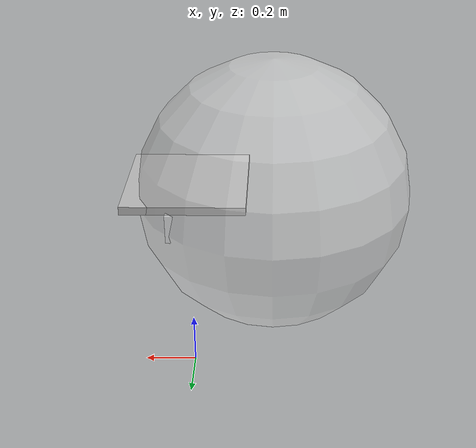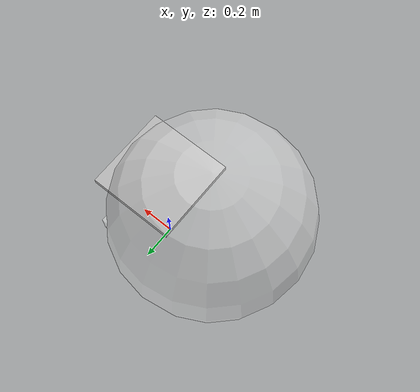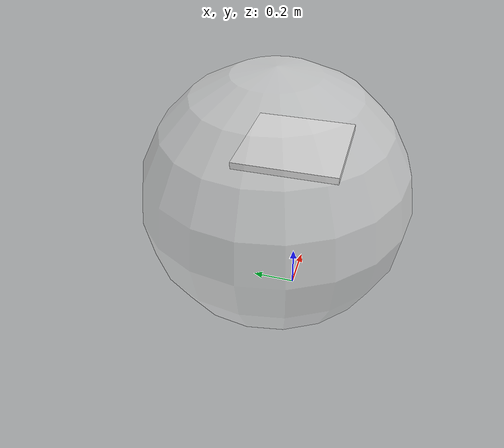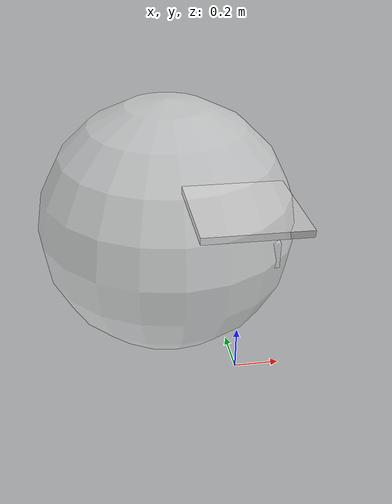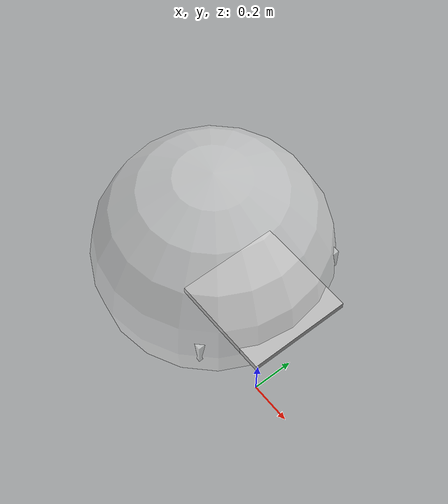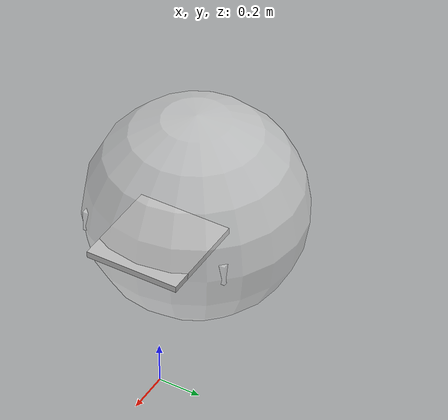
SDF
<sdf version="1.6">
 <world name="test_ur3_chess_game_free_chess_board">
  <gravity>0 0 -9.81</gravity>
  <physics name="default_physics" default="0" type="ode">
   <max_step_size>0.001</max_step_size>
   <real_time_factor>1</real_time_factor>
   <real_time_update_rate>1000</real_time_update_rate>
  </physics>
  <plugin name="ros_link_attacher_plugin" filename="libgazebo_ros_link_attacher.so"/>
  <scene><ambient>0.4 0.4 0.4 1</ambient><background>0.40 0.43 0.67 1</background><shadows>1</shadows></scene>
  <include><uri>model://sun</uri></include>
  <model name="chess_board">
   <pose>0 0 0.785 0 0 -1.57</pose>
   <link name="link">
    <inertial>
     <mass>0.5</mass>
     <inertia>
      <ixx>0.166667</ixx>
      <ixy>0</ixy>
      <ixz>0</ixz>
      <iyy>0.166667</iyy>
      <iyz>0</iyz>
      <izz>0.166667</izz>
     </inertia>
    </inertial>
    <visual name="visual">
     <geometry><mesh><uri>model://chess_board/meshes/chess_board.dae</uri></mesh></geometry>
    </visual>
    <collision name="collision">
     <geometry><mesh><uri>model://chess_board/meshes/chess_board.dae</uri></mesh></geometry>
     <surface>
      <friction>
       <ode><mu>1</mu><mu2>1</mu2><fdir1>0 0 0</fdir1><slip1>0</slip1><slip2>0</slip2></ode>
       <torsional>
        <coefficient>1</coefficient>
        <patch_radius>0</patch_radius>
        <surface_radius>0</surface_radius>
        <use_patch_radius>1</use_patch_radius>
        <ode><slip>0</slip></ode>
       </torsional>
      </friction>
      <bounce><restitution_coefficient>0</restitution_coefficient><threshold>1e+06</threshold></bounce>
      <contact>
       <collide_without_contact>0</collide_without_contact>
       <collide_without_contact_bitmask>1</collide_without_contact_bitmask>
       <collide_bitmask>1</collide_bitmask>
       <ode>
        <soft_cfm>0</soft_cfm>
        <soft_erp>0.2</soft_erp>
        <kp>1e+13</kp>
        <kd>1</kd>
        <max_vel>0.01</max_vel>
        <min_depth>0</min_depth>
       </ode>
       <bullet>
        <split_impulse>1</split_impulse>
        <split_impulse_penetration_threshold>-0.01</split_impulse_penetration_threshold>
        <soft_cfm>0</soft_cfm>
        <soft_erp>0.2</soft_erp>
        <kp>1e+13</kp>
        <kd>1</kd>
       </bullet>
      </contact>
     </surface>
    </collision>
   </link>
   <static>0</static>
  </model>
  <model name="robot_workspace">
   <pose>-0.315 0 0.775 0 0 0</pose>
   <link name="link">
    <inertial>
     <mass>1</mass>
     <inertia><ixx>0.1</ixx><ixy>0</ixy><ixz>0</ixz><iyy>0.1</iyy><iyz>0</iyz><izz>0.1</izz></inertia>
    </inertial>
    <gravity>0</gravity>
    <visual name="visual">
     <geometry><sphere><radius>0.5</radius></sphere></geometry>
     <material>
      <script><name>Gazebo/White</name><uri>file://media/materials/scripts/gazebo.material</uri></script>
      <shader type="pixel"><normal_map>__default__</normal_map></shader>
      <ambient>1 1 1 1</ambient>
      <diffuse>1 1 1 1</diffuse>
      <specular>0 0 0 1</specular>
      <emissive>0 0 0 1</emissive>
     </material>
     <transparency>0.55</transparency>
    </visual>
   </link>
   <static>1</static>
  </model>
  <model name="area_captured_pieces_1">
   <pose>-0.088 -0.286 0.8 0 0 1.57</pose>
   <link name="link">
    <inertial>
     <mass>1</mass>
     <inertia>
      <ixx>0.166667</ixx>
      <ixy>0</ixy>
      <ixz>0</ixz>
      <iyy>0.166667</iyy>
      <iyz>0</iyz>
      <izz>0.166667</izz>
     </inertia>
    </inertial>
    <gravity>0</gravity>
    <visual name="visual">
     <geometry><box><size>0.132 0.264 0.1</size></box></geometry>
     <material>
      <script><name>Gazebo/White</name><uri>file://media/materials/scripts/gazebo.material</uri></script>
      <shader type="pixel"><normal_map>__default__</normal_map></shader>
      <ambient>1 1 1 1</ambient>
      <diffuse>1 1 1 1</diffuse>
      <specular>0 0 0 1</specular>
      <emissive>0 0 0 1</emissive>
     </material>
     <transparency>0.55</transparency>
     <cast_shadows>0</cast_shadows>
    </visual>
   </link>
   <static>1</static>
  </model>
  <model name="area_captured_pieces_2">
   <pose>-0.088 0.286 0.8 0 0 1.57</pose>
   <link name="link">
    <inertial>
     <mass>1</mass>
     <inertia>
      <ixx>0.166667</ixx>
      <ixy>0</ixy>
      <ixz>0</ixz>
      <iyy>0.166667</iyy>
      <iyz>0</iyz>
      <izz>0.166667</izz>
     </inertia>
    </inertial>
    <gravity>0</gravity>
    <visual name="visual">
     <geometry><box><size>0.132 0.264 0.1</size></box></geometry>
     <material>
      <script><name>Gazebo/White</name><uri>file://media/materials/scripts/gazebo.material</uri></script>
      <shader type="pixel"><normal_map>__default__</normal_map></shader>
      <ambient>1 1 1 1</ambient>
      <diffuse>1 1 1 1</diffuse>
      <specular>0 0 0 1</specular>
      <emissive>0 0 0 1</emissive>
     </material>
     <transparency>0.55</transparency>
     <cast_shadows>0</cast_shadows>
    </visual>
   </link>
   <static>1</static>
  </model>
 </world>
</sdf>
